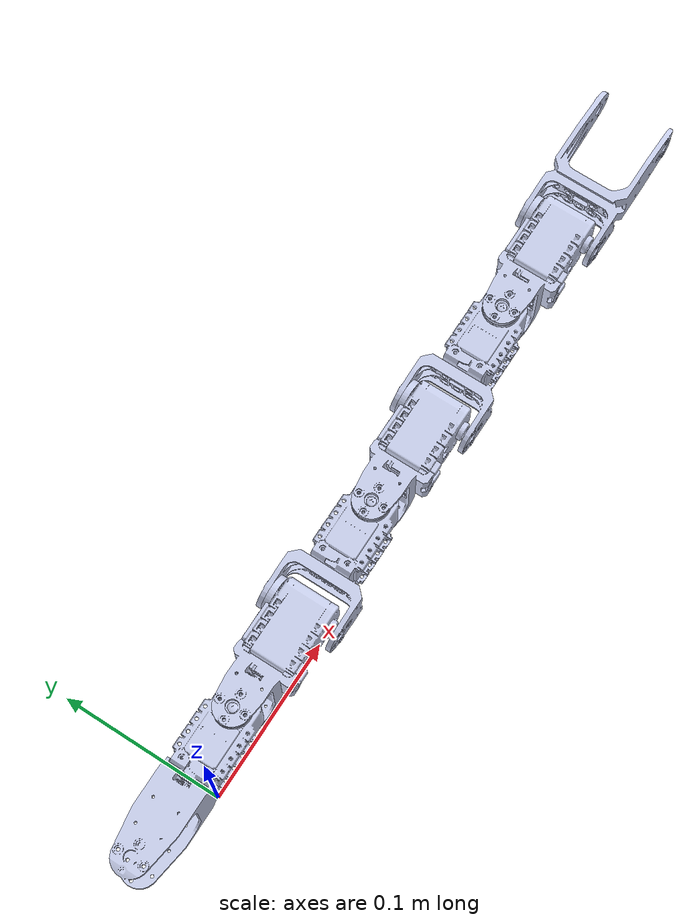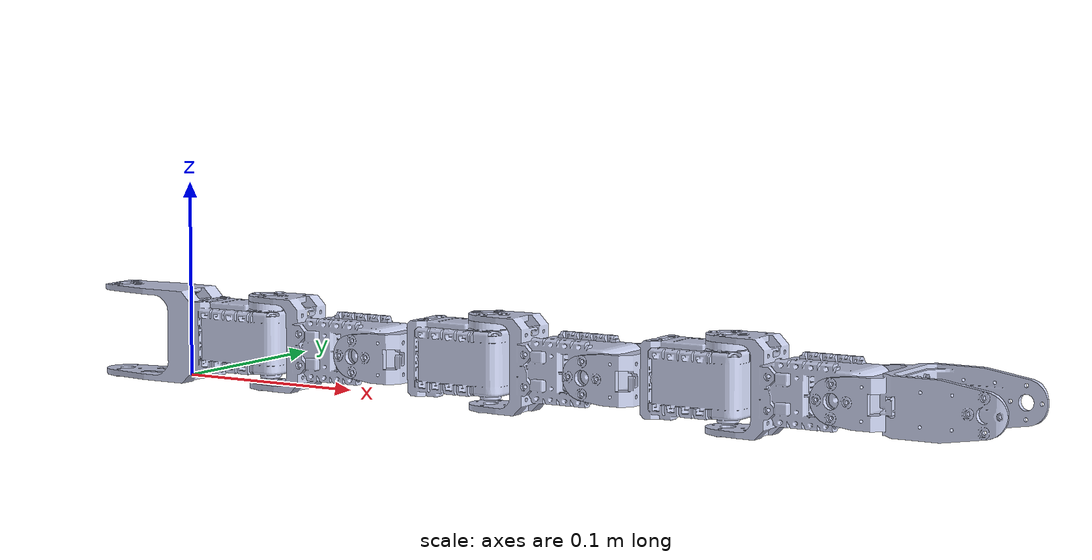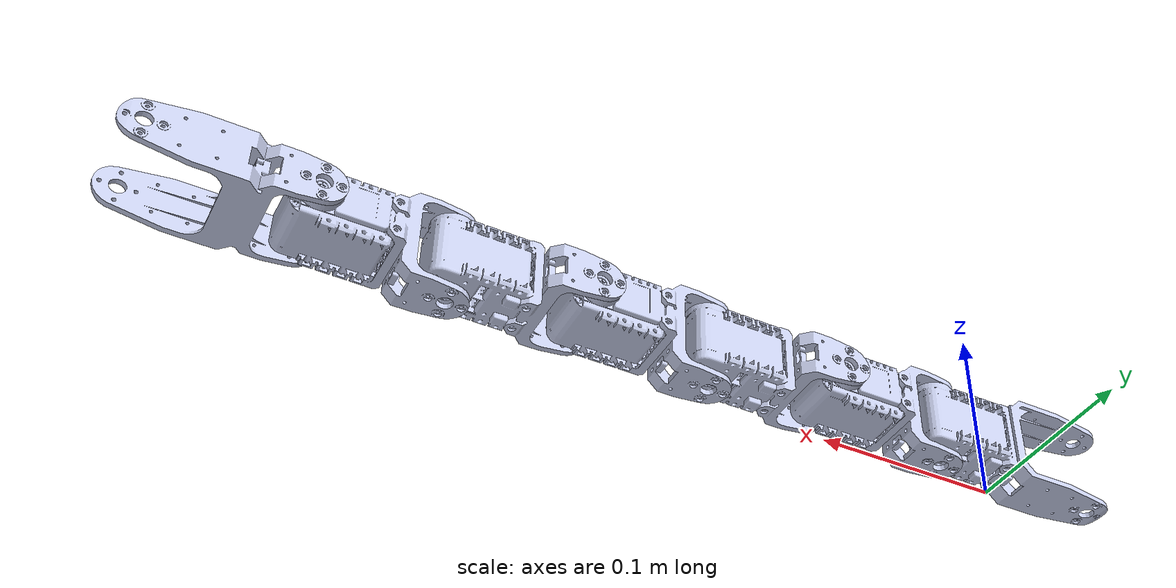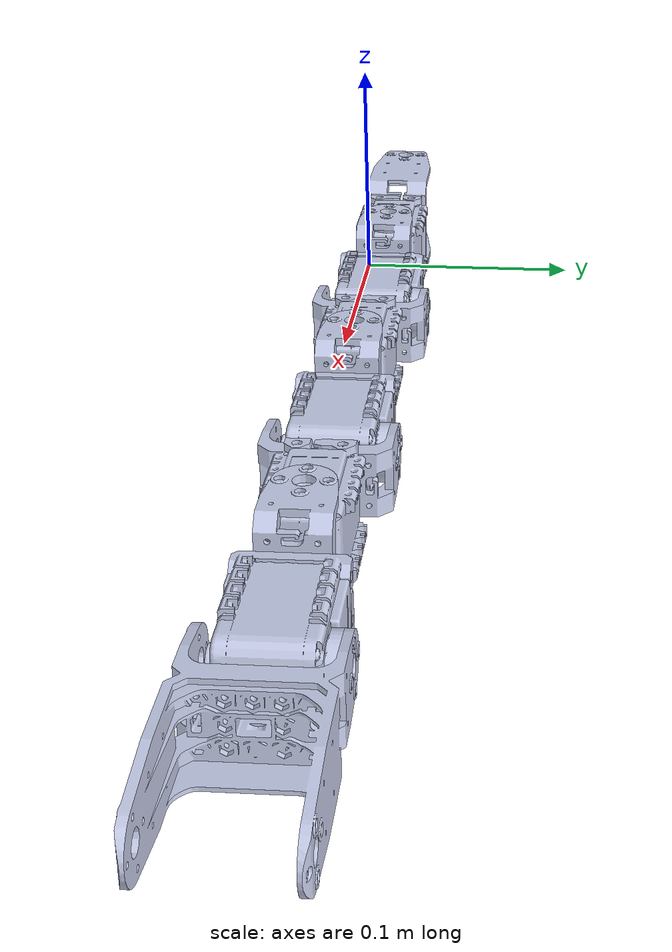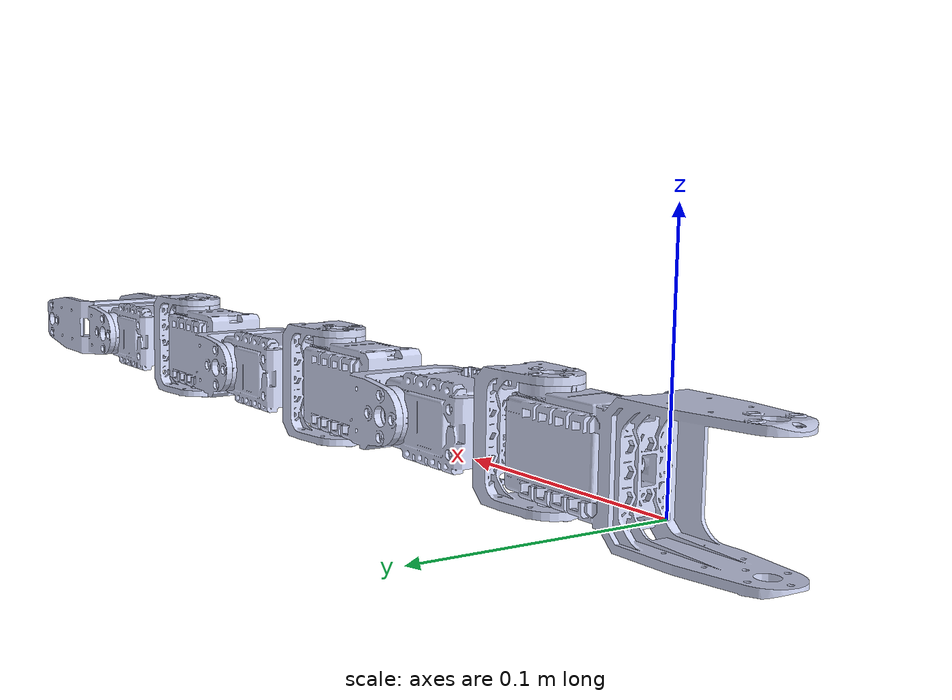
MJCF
<mujoco model="6Modules-Snake">
    <compiler angle="radian" />
    <size njmax="500" nconmax="100" />
    <asset>
        <mesh name="Tail" file="Tail.STL" />
        <mesh name="Module_1" file="Module_1.STL" />
        <mesh name="Module_2" file="Module_2.STL" />
        <mesh name="Module_3" file="Module_3.STL" />
        <mesh name="Module_4" file="Module_4.STL" />
        <mesh name="Module_5" file="Module_5.STL" />
        <mesh name="Head" file="Head.STL" />
    </asset>
    <worldbody>
        <geom type="mesh" rgba="0.79216 0.81961 0.93333 1" mesh="Tail" />
        <body name="Module_1" pos="0.0398 0.0145 0.043">
            <inertial pos="0.15843 0.00036206 -0.023661" quat="0.268962 0.65397 0.269933 0.653543" mass="0.34605" diaginertia="0.00569944 0.00569937 7.43933e-05" />
            <joint name="Joint_1" pos="0 0 0" axis="0 0 1" limited="true" range="-2 2" damping="5" frictionloss="20" />
            <geom type="mesh" rgba="0.79216 0.81961 0.93333 1" mesh="Module_1" />
            <body name="Module_2" pos="0.0675 0 -0.024">
                <inertial pos="0.090932 0.00036206 0.00033889" quat="0.268962 0.65397 0.269933 0.653543" mass="0.34605" diaginertia="0.00569944 0.00569937 7.43933e-05" />
                <joint name="Joint_2" pos="0 0 0" axis="0 -1 0" limited="true" range="-2 2" damping="5" frictionloss="20" />
                <geom type="mesh" rgba="0.79216 0.81961 0.93333 1" mesh="Module_2" />
                <body name="Module_3" pos="0.0675 0 0">
                    <inertial pos="0.023432 0.00036206 0.00033889" quat="0.268962 0.65397 0.269933 0.653543" mass="0.34605" diaginertia="0.00569944 0.00569937 7.43933e-05" />
                    <joint name="Joint_3" pos="0 0 0" axis="0 0 1" limited="true" range="-2 2" damping="5" frictionloss="20" />
                    <geom type="mesh" rgba="0.79216 0.81961 0.93333 1" mesh="Module_3" />
                    <body name="Module_4" pos="0.0675 0 0">
                        <inertial pos="-0.044068 0.00036206 0.00033889" quat="0.268962 0.65397 0.269933 0.653543" mass="0.34605" diaginertia="0.00569944 0.00569937 7.43933e-05" />
                        <joint name="Joint_4" pos="0 0 0" axis="0 -1 0" limited="true" range="-2 2" damping="5" frictionloss="20" />
                        <geom type="mesh" rgba="0.79216 0.81961 0.93333 1" mesh="Module_4" />
                        <body name="Module_5" pos="0.0675 0 0">
                            <inertial pos="-0.11157 0.00036206 0.00033889" quat="0.268962 0.65397 0.269933 0.653543" mass="0.34605" diaginertia="0.00569944 0.00569937 7.43933e-05" />
                            <joint name="Joint_5" pos="0 0 0" axis="0 0 1" limited="true" range="-2 2" damping="5" frictionloss="20" />
                            <geom type="mesh" rgba="0.79216 0.81961 0.93333 1" mesh="Module_5" />
                            <body name="Head" pos="0.0675 0 0">
                                <inertial pos="-0.17907 0.00036206 0.00033889" quat="0.268962 0.65397 0.269933 0.653543" mass="0.34605" diaginertia="0.00569944 0.00569937 7.43933e-05" />
                                <joint name="Joint_Head" pos="0 0 0" axis="0 1 0" limited="true" range="-2 2" damping="5" frictionloss="20" />
                                <geom type="mesh" rgba="0.79216 0.81961 0.93333 1" mesh="Head" />
                            </body>
                        </body>
                    </body>
                </body>
            </body>
        </body>
    </worldbody>
</mujoco>
